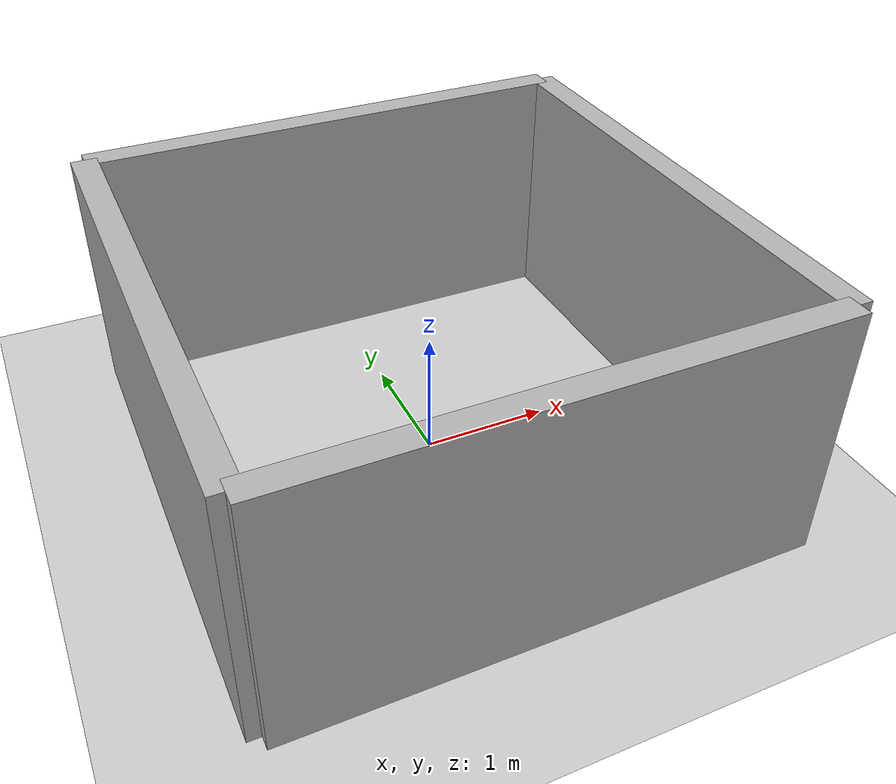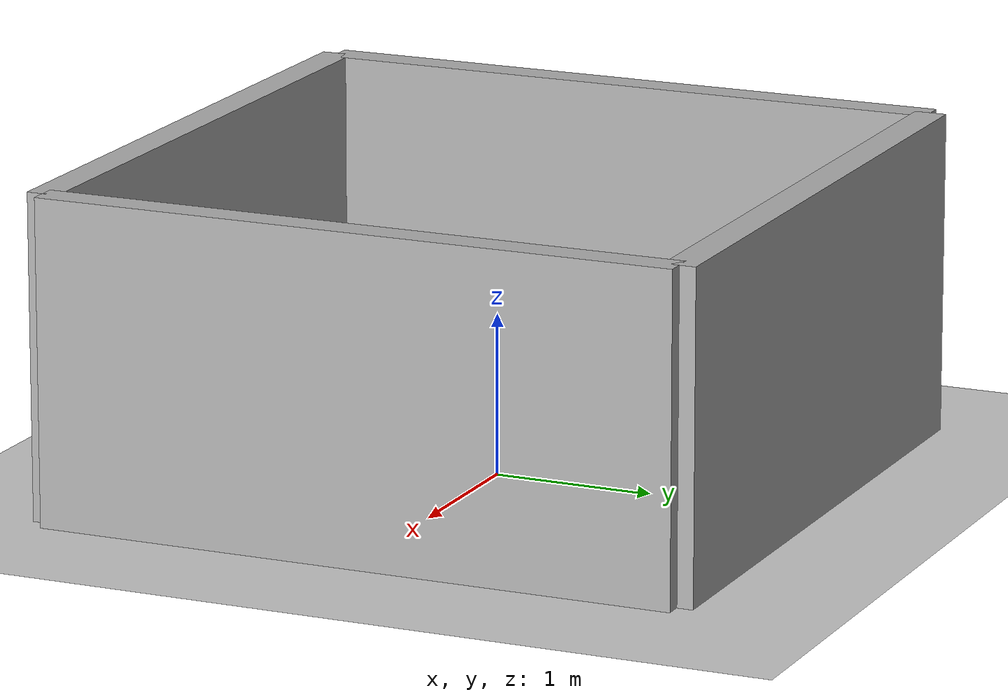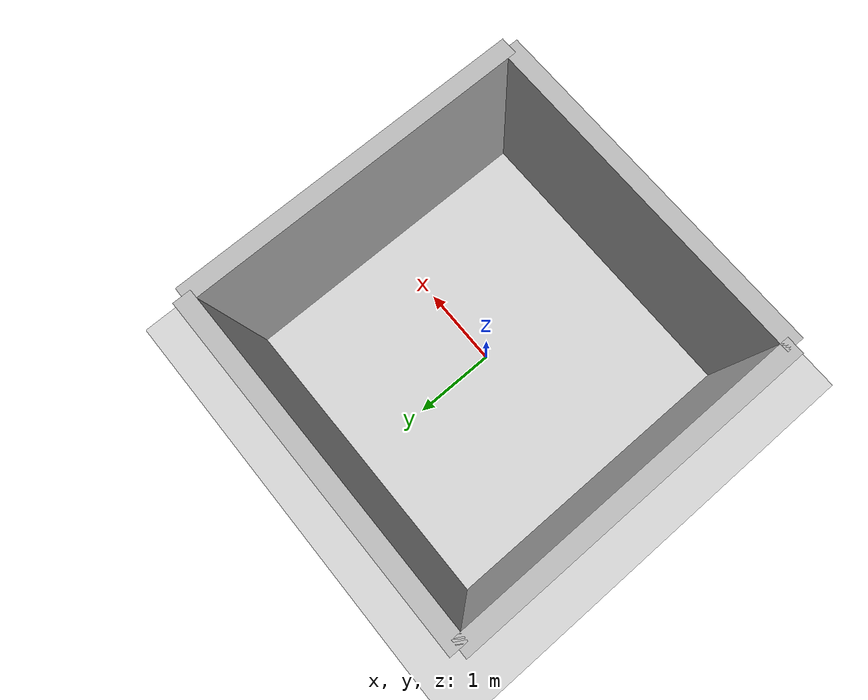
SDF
<?xml version="1.0" ?>
<sdf version="1.7">
  <world name="small_test_room">
    <plugin filename="gz-sim-physics-system" name="gz::sim::systems::Physics"></plugin>
    <plugin filename="gz-sim-user-commands-system" name="gz::sim::systems::UserCommands"></plugin>
    <plugin filename="gz-sim-scene-broadcaster-system" name="gz::sim::systems::SceneBroadcaster"></plugin>
    <plugin filename="gz-sim-sensors-system" name="gz::sim::systems::Sensors">
      <render_engine>ogre2</render_engine>
    </plugin>
    <scene>
      <ambient>1.0 1.0 1.0 1</ambient>
      <background>0.5 0.5 0.5 1</background>
      <shadows>true</shadows>
    </scene>

    <light type="directional" name="sun">
      <cast_shadows>true</cast_shadows>
      <pose>0 0 10 0 0 0</pose>
      <diffuse>0.8 0.8 0.8 1</diffuse>
      <specular>0.2 0.2 0.2 1</specular>
      <direction>-0.5 0.1 -0.9</direction>
    </light>

    <model name="ground_plane">
      <static>true</static>
      <link name="link">
        <collision name="collision"><geometry><plane><normal>0 0 1</normal><size>20 20</size></plane></geometry></collision>
        <visual name="visual">
          <geometry><plane><normal>0 0 1</normal><size>20 20</size></plane></geometry>
          <material><ambient>0.8 0.8 0.8 1</ambient><diffuse>0.8 0.8 0.8 1</diffuse></material>
        </visual>
      </link>
    </model>

    <model name="walls">
      <static>true</static>
      <link name="link">
        <collision name="n_col"><pose>0 2 1 0 0 0</pose><geometry><box><size>4 0.2 2</size></box></geometry></collision>
        <visual name="n_vis"><pose>0 2 1 0 0 0</pose><geometry><box><size>4 0.2 2</size></box></geometry><material><ambient>0.7 0.7 0.7 1</ambient><diffuse>0.7 0.7 0.7 1</diffuse></material></visual>

        <collision name="s_col"><pose>0 -2 1 0 0 0</pose><geometry><box><size>4 0.2 2</size></box></geometry></collision>
        <visual name="s_vis"><pose>0 -2 1 0 0 0</pose><geometry><box><size>4 0.2 2</size></box></geometry><material><ambient>0.7 0.7 0.7 1</ambient><diffuse>0.7 0.7 0.7 1</diffuse></material></visual>

        <collision name="e_col"><pose>2 0 1 0 0 0</pose><geometry><box><size>0.2 4 2</size></box></geometry></collision>
        <visual name="e_vis"><pose>2 0 1 0 0 0</pose><geometry><box><size>0.2 4 2</size></box></geometry><material><ambient>0.7 0.7 0.7 1</ambient><diffuse>0.7 0.7 0.7 1</diffuse></material></visual>

        <collision name="w_col"><pose>-2 0 1 0 0 0</pose><geometry><box><size>0.2 4 2</size></box></geometry></collision>
        <visual name="w_vis"><pose>-2 0 1 0 0 0</pose><geometry><box><size>0.2 4 2</size></box></geometry><material><ambient>0.7 0.7 0.7 1</ambient><diffuse>0.7 0.7 0.7 1</diffuse></material></visual>
      </link>
    </model>

  </world>
</sdf>
